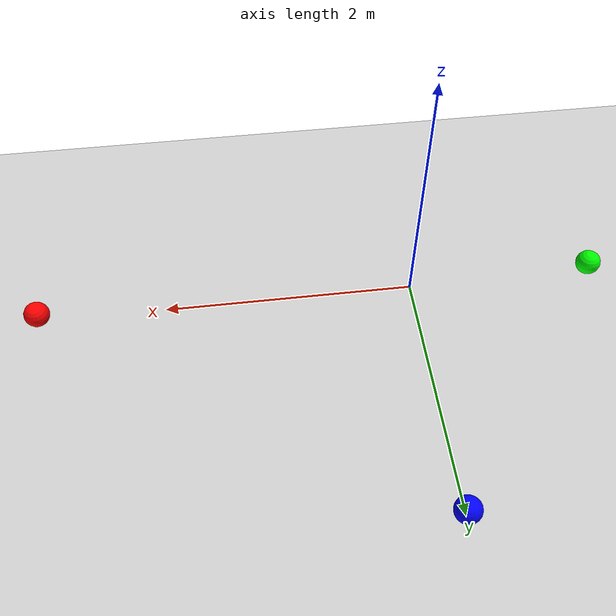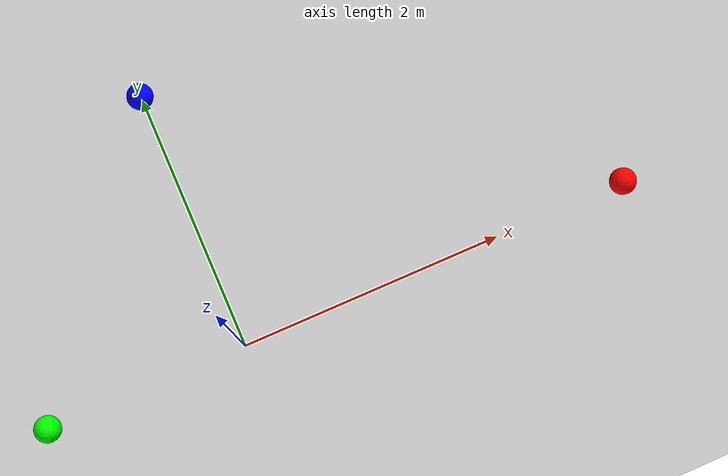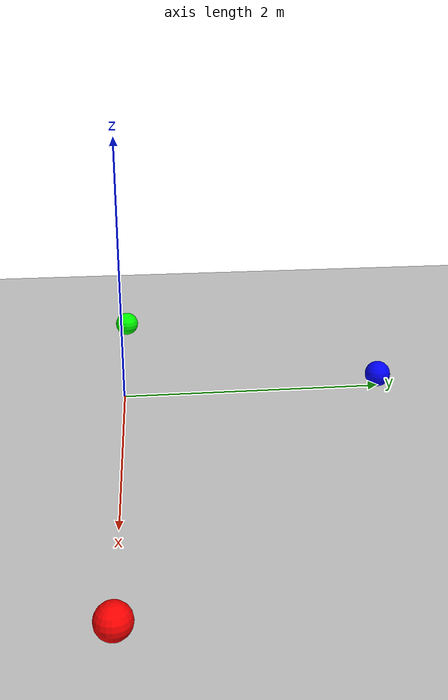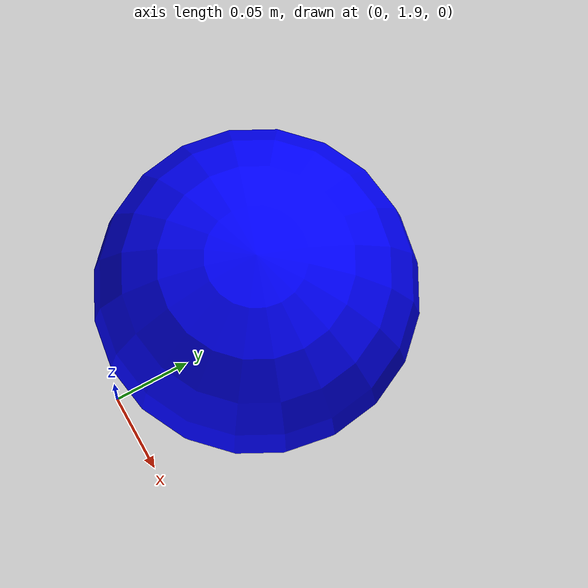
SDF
<?xml version="1.0"?>
<sdf version="1.6">
  <world name="default">

    <include>
      <uri>model://ground_plane</uri>
    </include>

    <include>
      <uri>model://sun</uri>
    </include>

    <!-- Red Ball — robot should follow this -->
    <model name="red_ball">
      <static>false</static>
      <pose>3.0 0   0.1 0 0 0</pose>
      <link name="link">
        <collision name="collision">
          <geometry><sphere><radius>0.1</radius></sphere></geometry>
        </collision>
        <visual name="visual">
          <geometry><sphere><radius>0.1</radius></sphere></geometry>
          <material>
            <ambient>1 0 0 1</ambient>
            <diffuse>1 0 0 1</diffuse>
          </material>
        </visual>
      </link>
    </model>

    <!-- Blue Ball — distractor -->
    <model name="blue_ball">
      <static>false</static>
      <pose>0.0 2.0 0.1 0 0 0</pose>
      <link name="link">
        <collision name="collision">
          <geometry><sphere><radius>0.1</radius></sphere></geometry>
        </collision>
        <visual name="visual">
          <geometry><sphere><radius>0.1</radius></sphere></geometry>
          <material>
            <ambient>0 0 1 1</ambient>
            <diffuse>0 0 1 1</diffuse>
          </material>
        </visual>
      </link>
    </model>

    <!-- Green Ball — distractor -->
    <model name="green_ball">
      <static>false</static>
      <pose>-1.5 0 0.1 0 0 0</pose>
      <link name="link">
        <collision name="collision">
          <geometry><sphere><radius>0.1</radius></sphere></geometry>
        </collision>
        <visual name="visual">
          <geometry><sphere><radius>0.1</radius></sphere></geometry>
          <material>
            <ambient>0 1 0 1</ambient>
            <diffuse>0 1 0 1</diffuse>
          </material>
        </visual>
      </link>
    </model>

  </world>
</sdf>
